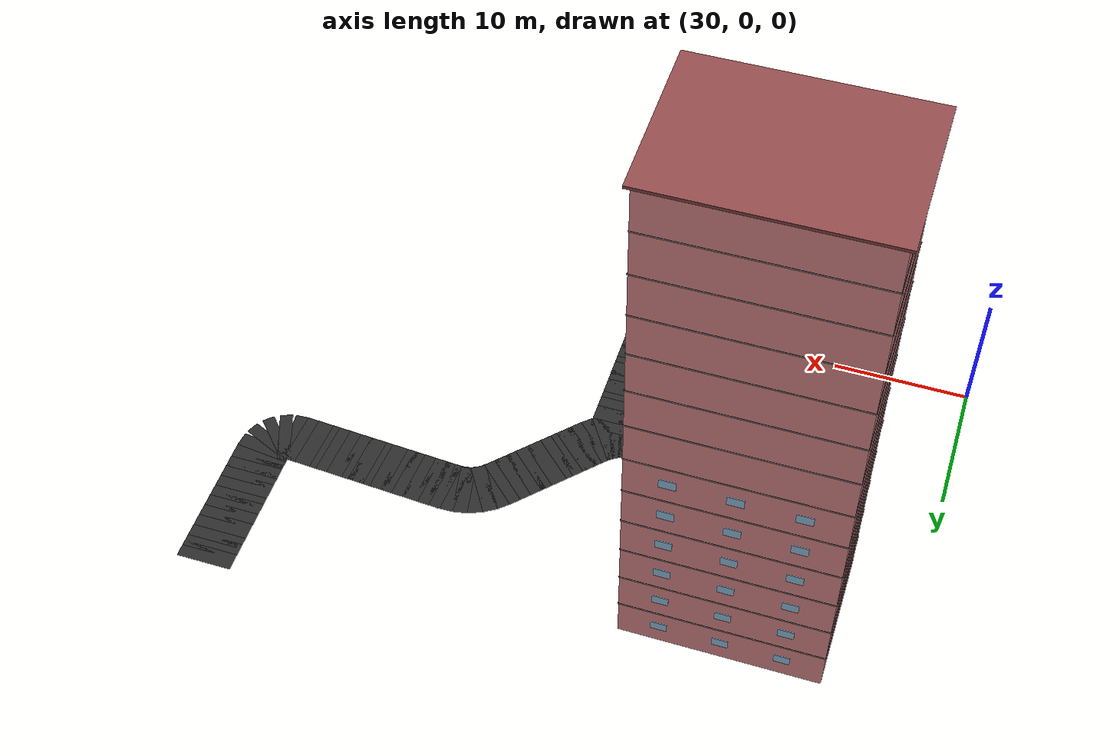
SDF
<sdf version="1.7">
 <world name="campus_delivery">
  <model name="campus_roads">
   <static>true</static>
   <link name="east_service_connector_0028">
    <pose>54.000 0.711 0.002 0 0 1.570796</pose>
    <visual name="visual">
     <geometry><box><size>1.245 4.000 0.004</size></box></geometry>
     <material><ambient>0.160 0.160 0.160 1.000</ambient><diffuse>0.160 0.160 0.160 1.000</diffuse></material>
    </visual>
   </link>
   <link name="east_service_connector_0029">
    <pose>54.000 1.605 0.002 0 0 1.570796</pose>
    <visual name="visual">
     <geometry><box><size>1.245 4.000 0.004</size></box></geometry>
     <material><ambient>0.160 0.160 0.160 1.000</ambient><diffuse>0.160 0.160 0.160 1.000</diffuse></material>
    </visual>
   </link>
   <link name="east_service_connector_0030">
    <pose>54.000 2.500 0.002 0 0 1.570796</pose>
    <visual name="visual">
     <geometry><box><size>1.245 4.000 0.004</size></box></geometry>
     <material><ambient>0.160 0.160 0.160 1.000</ambient><diffuse>0.160 0.160 0.160 1.000</diffuse></material>
    </visual>
   </link>
   <link name="east_service_connector_0031">
    <pose>54.000 3.395 0.002 0 0 1.570796</pose>
    <visual name="visual">
     <geometry><box><size>1.245 4.000 0.004</size></box></geometry>
     <material><ambient>0.160 0.160 0.160 1.000</ambient><diffuse>0.160 0.160 0.160 1.000</diffuse></material>
    </visual>
   </link>
   <link name="east_service_connector_0032">
    <pose>54.000 4.289 0.002 0 0 1.570796</pose>
    <visual name="visual">
     <geometry><box><size>1.245 4.000 0.004</size></box></geometry>
     <material><ambient>0.160 0.160 0.160 1.000</ambient><diffuse>0.160 0.160 0.160 1.000</diffuse></material>
    </visual>
   </link>
   <link name="east_service_connector_0033">
    <pose>54.000 5.184 0.002 0 0 1.570796</pose>
    <visual name="visual">
     <geometry><box><size>1.245 4.000 0.004</size></box></geometry>
     <material><ambient>0.160 0.160 0.160 1.000</ambient><diffuse>0.160 0.160 0.160 1.000</diffuse></material>
    </visual>
   </link>
   <link name="east_service_connector_0034">
    <pose>54.000 6.079 0.002 0 0 1.570796</pose>
    <visual name="visual">
     <geometry><box><size>1.245 4.000 0.004</size></box></geometry>
     <material><ambient>0.160 0.160 0.160 1.000</ambient><diffuse>0.160 0.160 0.160 1.000</diffuse></material>
    </visual>
   </link>
   <link name="east_service_connector_0035">
    <pose>54.000 6.974 0.002 0 0 1.570796</pose>
    <visual name="visual">
     <geometry><box><size>1.245 4.000 0.004</size></box></geometry>
     <material><ambient>0.160 0.160 0.160 1.000</ambient><diffuse>0.160 0.160 0.160 1.000</diffuse></material>
    </visual>
   </link>
   <link name="east_service_connector_0036">
    <pose>54.000 7.868 0.002 0 0 1.570796</pose>
    <visual name="visual">
     <geometry><box><size>1.245 4.000 0.004</size></box></geometry>
     <material><ambient>0.160 0.160 0.160 1.000</ambient><diffuse>0.160 0.160 0.160 1.000</diffuse></material>
    </visual>
   </link>
   <link name="east_service_connector_0037">
    <pose>54.000 8.763 0.002 0 0 1.570796</pose>
    <visual name="visual">
     <geometry><box><size>1.245 4.000 0.004</size></box></geometry>
     <material><ambient>0.160 0.160 0.160 1.000</ambient><diffuse>0.160 0.160 0.160 1.000</diffuse></material>
    </visual>
   </link>
   <link name="east_service_connector_0038">
    <pose>54.000 9.658 0.002 0 0 1.570796</pose>
    <visual name="visual">
     <geometry><box><size>1.245 4.000 0.004</size></box></geometry>
     <material><ambient>0.160 0.160 0.160 1.000</ambient><diffuse>0.160 0.160 0.160 1.000</diffuse></material>
    </visual>
   </link>
   <link name="east_service_connector_0039">
    <pose>54.000 10.553 0.002 0 0 1.570796</pose>
    <visual name="visual">
     <geometry><box><size>1.245 4.000 0.004</size></box></geometry>
     <material><ambient>0.160 0.160 0.160 1.000</ambient><diffuse>0.160 0.160 0.160 1.000</diffuse></material>
    </visual>
   </link>
   <link name="north_campus_loop_0012">
    <pose>42.870 11.000 0.002 0 0 0.000000</pose>
    <visual name="visual">
     <geometry><box><size>1.220 4.000 0.004</size></box></geometry>
     <material><ambient>0.160 0.160 0.160 1.000</ambient><diffuse>0.160 0.160 0.160 1.000</diffuse></material>
    </visual>
   </link>
   <link name="north_campus_loop_0013">
    <pose>43.739 11.000 0.002 0 0 0.000000</pose>
    <visual name="visual">
     <geometry><box><size>1.220 4.000 0.004</size></box></geometry>
     <material><ambient>0.160 0.160 0.160 1.000</ambient><diffuse>0.160 0.160 0.160 1.000</diffuse></material>
    </visual>
   </link>
   <link name="north_campus_loop_0014">
    <pose>44.609 11.000 0.002 0 0 0.000000</pose>
    <visual name="visual">
     <geometry><box><size>1.220 4.000 0.004</size></box></geometry>
     <material><ambient>0.160 0.160 0.160 1.000</ambient><diffuse>0.160 0.160 0.160 1.000</diffuse></material>
    </visual>
   </link>
   <link name="north_campus_loop_0015">
    <pose>45.478 11.000 0.002 0 0 0.000000</pose>
    <visual name="visual">
     <geometry><box><size>1.220 4.000 0.004</size></box></geometry>
     <material><ambient>0.160 0.160 0.160 1.000</ambient><diffuse>0.160 0.160 0.160 1.000</diffuse></material>
    </visual>
   </link>
   <link name="north_campus_loop_0016">
    <pose>46.348 11.000 0.002 0 0 0.000000</pose>
    <visual name="visual">
     <geometry><box><size>1.220 4.000 0.004</size></box></geometry>
     <material><ambient>0.160 0.160 0.160 1.000</ambient><diffuse>0.160 0.160 0.160 1.000</diffuse></material>
    </visual>
   </link>
   <link name="north_campus_loop_0017">
    <pose>47.217 11.000 0.002 0 0 0.000000</pose>
    <visual name="visual">
     <geometry><box><size>1.220 4.000 0.004</size></box></geometry>
     <material><ambient>0.160 0.160 0.160 1.000</ambient><diffuse>0.160 0.160 0.160 1.000</diffuse></material>
    </visual>
   </link>
   <link name="north_campus_loop_0018">
    <pose>48.087 11.000 0.002 0 0 0.000000</pose>
    <visual name="visual">
     <geometry><box><size>1.220 4.000 0.004</size></box></geometry>
     <material><ambient>0.160 0.160 0.160 1.000</ambient><diffuse>0.160 0.160 0.160 1.000</diffuse></material>
    </visual>
   </link>
   <link name="north_campus_loop_0019">
    <pose>48.957 11.000 0.002 0 0 0.000000</pose>
    <visual name="visual">
     <geometry><box><size>1.220 4.000 0.004</size></box></geometry>
     <material><ambient>0.160 0.160 0.160 1.000</ambient><diffuse>0.160 0.160 0.160 1.000</diffuse></material>
    </visual>
   </link>
   <link name="north_campus_loop_0020">
    <pose>49.826 11.000 0.002 0 0 0.000000</pose>
    <visual name="visual">
     <geometry><box><size>1.220 4.000 0.004</size></box></geometry>
     <material><ambient>0.160 0.160 0.160 1.000</ambient><diffuse>0.160 0.160 0.160 1.000</diffuse></material>
    </visual>
   </link>
   <link name="north_campus_loop_0021">
    <pose>50.696 11.000 0.002 0 0 0.000000</pose>
    <visual name="visual">
     <geometry><box><size>1.220 4.000 0.004</size></box></geometry>
     <material><ambient>0.160 0.160 0.160 1.000</ambient><diffuse>0.160 0.160 0.160 1.000</diffuse></material>
    </visual>
   </link>
   <link name="north_campus_loop_0022">
    <pose>51.565 11.000 0.002 0 0 0.000000</pose>
    <visual name="visual">
     <geometry><box><size>1.220 4.000 0.004</size></box></geometry>
     <material><ambient>0.160 0.160 0.160 1.000</ambient><diffuse>0.160 0.160 0.160 1.000</diffuse></material>
    </visual>
   </link>
   <link name="north_campus_loop_0023">
    <pose>52.387 11.029 0.002 0 0 0.075044</pose>
    <visual name="visual">
     <geometry><box><size>1.127 4.000 0.004</size></box></geometry>
     <material><ambient>0.160 0.160 0.160 1.000</ambient><diffuse>0.160 0.160 0.160 1.000</diffuse></material>
    </visual>
   </link>
   <link name="north_campus_loop_0024">
    <pose>53.137 11.146 0.002 0 0 0.236707</pose>
    <visual name="visual">
     <geometry><box><size>1.095 4.000 0.004</size></box></geometry>
     <material><ambient>0.160 0.160 0.160 1.000</ambient><diffuse>0.160 0.160 0.160 1.000</diffuse></material>
    </visual>
   </link>
   <link name="north_campus_loop_0025">
    <pose>53.836 11.379 0.002 0 0 0.407846</pose>
    <visual name="visual">
     <geometry><box><size>1.084 4.000 0.004</size></box></geometry>
     <material><ambient>0.160 0.160 0.160 1.000</ambient><diffuse>0.160 0.160 0.160 1.000</diffuse></material>
    </visual>
   </link>
   <link name="north_campus_loop_0026">
    <pose>54.485 11.728 0.002 0 0 0.578984</pose>
    <visual name="visual">
     <geometry><box><size>1.095 4.000 0.004</size></box></geometry>
     <material><ambient>0.160 0.160 0.160 1.000</ambient><diffuse>0.160 0.160 0.160 1.000</diffuse></material>
    </visual>
   </link>
   <link name="north_campus_loop_0027">
    <pose>55.084 12.194 0.002 0 0 0.740648</pose>
    <visual name="visual">
     <geometry><box><size>1.127 4.000 0.004</size></box></geometry>
     <material><ambient>0.160 0.160 0.160 1.000</ambient><diffuse>0.160 0.160 0.160 1.000</diffuse></material>
    </visual>
   </link>
   <link name="north_campus_loop_0028">
    <pose>55.663 12.767 0.002 0 0 0.815692</pose>
    <visual name="visual">
     <geometry><box><size>1.203 4.000 0.004</size></box></geometry>
     <material><ambient>0.160 0.160 0.160 1.000</ambient><diffuse>0.160 0.160 0.160 1.000</diffuse></material>
    </visual>
   </link>
   <link name="north_campus_loop_0029">
    <pose>56.247 13.388 0.002 0 0 0.815692</pose>
    <visual name="visual">
     <geometry><box><size>1.203 4.000 0.004</size></box></geometry>
     <material><ambient>0.160 0.160 0.160 1.000</ambient><diffuse>0.160 0.160 0.160 1.000</diffuse></material>
    </visual>
   </link>
   <link name="north_campus_loop_0030">
    <pose>56.831 14.008 0.002 0 0 0.815692</pose>
    <visual name="visual">
     <geometry><box><size>1.203 4.000 0.004</size></box></geometry>
     <material><ambient>0.160 0.160 0.160 1.000</ambient><diffuse>0.160 0.160 0.160 1.000</diffuse></material>
    </visual>
   </link>
   <link name="north_campus_loop_0031">
    <pose>57.416 14.629 0.002 0 0 0.815692</pose>
    <visual name="visual">
     <geometry><box><size>1.203 4.000 0.004</size></box></geometry>
     <material><ambient>0.160 0.160 0.160 1.000</ambient><diffuse>0.160 0.160 0.160 1.000</diffuse></material>
    </visual>
   </link>
   <link name="north_campus_loop_0032">
    <pose>58.000 15.250 0.002 0 0 0.815692</pose>
    <visual name="visual">
     <geometry><box><size>1.203 4.000 0.004</size></box></geometry>
     <material><ambient>0.160 0.160 0.160 1.000</ambient><diffuse>0.160 0.160 0.160 1.000</diffuse></material>
    </visual>
   </link>
   <link name="north_campus_loop_0033">
    <pose>58.584 15.871 0.002 0 0 0.815692</pose>
    <visual name="visual">
     <geometry><box><size>1.203 4.000 0.004</size></box></geometry>
     <material><ambient>0.160 0.160 0.160 1.000</ambient><diffuse>0.160 0.160 0.160 1.000</diffuse></material>
    </visual>
   </link>
   <link name="north_campus_loop_0034">
    <pose>59.169 16.492 0.002 0 0 0.815692</pose>
    <visual name="visual">
     <geometry><box><size>1.203 4.000 0.004</size></box></geometry>
     <material><ambient>0.160 0.160 0.160 1.000</ambient><diffuse>0.160 0.160 0.160 1.000</diffuse></material>
    </visual>
   </link>
   <link name="north_campus_loop_0035">
    <pose>59.753 17.112 0.002 0 0 0.815692</pose>
    <visual name="visual">
     <geometry><box><size>1.203 4.000 0.004</size></box></geometry>
     <material><ambient>0.160 0.160 0.160 1.000</ambient><diffuse>0.160 0.160 0.160 1.000</diffuse></material>
    </visual>
   </link>
   <link name="north_campus_loop_0036">
    <pose>60.337 17.733 0.002 0 0 0.815692</pose>
    <visual name="visual">
     <geometry><box><size>1.203 4.000 0.004</size></box></geometry>
     <material><ambient>0.160 0.160 0.160 1.000</ambient><diffuse>0.160 0.160 0.160 1.000</diffuse></material>
    </visual>
   </link>
   <link name="north_campus_loop_0037">
    <pose>60.916 18.303 0.002 0 0 0.736022</pose>
    <visual name="visual">
     <geometry><box><size>1.124 4.000 0.004</size></box></geometry>
     <material><ambient>0.160 0.160 0.160 1.000</ambient><diffuse>0.160 0.160 0.160 1.000</diffuse></material>
    </visual>
   </link>
   <link name="north_campus_loop_0038">
    <pose>61.514 18.759 0.002 0 0 0.562323</pose>
    <visual name="visual">
     <geometry><box><size>1.087 4.000 0.004</size></box></geometry>
     <material><ambient>0.160 0.160 0.160 1.000</ambient><diffuse>0.160 0.160 0.160 1.000</diffuse></material>
    </visual>
   </link>
   <link name="north_campus_loop_0039">
    <pose>62.163 19.089 0.002 0 0 0.376637</pose>
    <visual name="visual">
     <geometry><box><size>1.074 4.000 0.004</size></box></geometry>
     <material><ambient>0.160 0.160 0.160 1.000</ambient><diffuse>0.160 0.160 0.160 1.000</diffuse></material>
    </visual>
   </link>
   <link name="north_campus_loop_0040">
    <pose>62.861 19.292 0.002 0 0 0.190950</pose>
    <visual name="visual">
     <geometry><box><size>1.087 4.000 0.004</size></box></geometry>
     <material><ambient>0.160 0.160 0.160 1.000</ambient><diffuse>0.160 0.160 0.160 1.000</diffuse></material>
    </visual>
   </link>
   <link name="north_campus_loop_0041">
    <pose>63.609 19.369 0.002 0 0 0.017251</pose>
    <visual name="visual">
     <geometry><box><size>1.124 4.000 0.004</size></box></geometry>
     <material><ambient>0.160 0.160 0.160 1.000</ambient><diffuse>0.160 0.160 0.160 1.000</diffuse></material>
    </visual>
   </link>
   <link name="north_campus_loop_0042">
    <pose>64.425 19.348 0.002 0 0 -0.062419</pose>
    <visual name="visual">
     <geometry><box><size>1.209 4.000 0.004</size></box></geometry>
     <material><ambient>0.160 0.160 0.160 1.000</ambient><diffuse>0.160 0.160 0.160 1.000</diffuse></material>
    </visual>
   </link>
   <link name="north_campus_loop_0043">
    <pose>65.283 19.295 0.002 0 0 -0.062419</pose>
    <visual name="visual">
     <geometry><box><size>1.209 4.000 0.004</size></box></geometry>
     <material><ambient>0.160 0.160 0.160 1.000</ambient><diffuse>0.160 0.160 0.160 1.000</diffuse></material>
    </visual>
   </link>
   <link name="north_campus_loop_0044">
    <pose>66.140 19.241 0.002 0 0 -0.062419</pose>
    <visual name="visual">
     <geometry><box><size>1.209 4.000 0.004</size></box></geometry>
     <material><ambient>0.160 0.160 0.160 1.000</ambient><diffuse>0.160 0.160 0.160 1.000</diffuse></material>
    </visual>
   </link>
   <link name="north_campus_loop_0045">
    <pose>66.998 19.188 0.002 0 0 -0.062419</pose>
    <visual name="visual">
     <geometry><box><size>1.209 4.000 0.004</size></box></geometry>
     <material><ambient>0.160 0.160 0.160 1.000</ambient><diffuse>0.160 0.160 0.160 1.000</diffuse></material>
    </visual>
   </link>
   <link name="north_campus_loop_0046">
    <pose>67.856 19.134 0.002 0 0 -0.062419</pose>
    <visual name="visual">
     <geometry><box><size>1.209 4.000 0.004</size></box></geometry>
     <material><ambient>0.160 0.160 0.160 1.000</ambient><diffuse>0.160 0.160 0.160 1.000</diffuse></material>
    </visual>
   </link>
   <link name="north_campus_loop_0047">
    <pose>68.713 19.080 0.002 0 0 -0.062419</pose>
    <visual name="visual">
     <geometry><box><size>1.209 4.000 0.004</size></box></geometry>
     <material><ambient>0.160 0.160 0.160 1.000</ambient><diffuse>0.160 0.160 0.160 1.000</diffuse></material>
    </visual>
   </link>
   <link name="north_campus_loop_0048">
    <pose>69.571 19.027 0.002 0 0 -0.062419</pose>
    <visual name="visual">
     <geometry><box><size>1.209 4.000 0.004</size></box></geometry>
     <material><ambient>0.160 0.160 0.160 1.000</ambient><diffuse>0.160 0.160 0.160 1.000</diffuse></material>
    </visual>
   </link>
   <link name="north_campus_loop_0049">
    <pose>70.429 18.973 0.002 0 0 -0.062419</pose>
    <visual name="visual">
     <geometry><box><size>1.209 4.000 0.004</size></box></geometry>
     <material><ambient>0.160 0.160 0.160 1.000</ambient><diffuse>0.160 0.160 0.160 1.000</diffuse></material>
    </visual>
   </link>
   <link name="north_campus_loop_0050">
    <pose>71.287 18.920 0.002 0 0 -0.062419</pose>
    <visual name="visual">
     <geometry><box><size>1.209 4.000 0.004</size></box></geometry>
     <material><ambient>0.160 0.160 0.160 1.000</ambient><diffuse>0.160 0.160 0.160 1.000</diffuse></material>
    </visual>
   </link>
   <link name="north_campus_loop_0051">
    <pose>72.144 18.866 0.002 0 0 -0.062419</pose>
    <visual name="visual">
     <geometry><box><size>1.209 4.000 0.004</size></box></geometry>
     <material><ambient>0.160 0.160 0.160 1.000</ambient><diffuse>0.160 0.160 0.160 1.000</diffuse></material>
    </visual>
   </link>
   <link name="north_campus_loop_0052">
    <pose>73.002 18.812 0.002 0 0 -0.062419</pose>
    <visual name="visual">
     <geometry><box><size>1.209 4.000 0.004</size></box></geometry>
     <material><ambient>0.160 0.160 0.160 1.000</ambient><diffuse>0.160 0.160 0.160 1.000</diffuse></material>
    </visual>
   </link>
   <link name="north_campus_loop_0053">
    <pose>73.860 18.759 0.002 0 0 -0.062419</pose>
    <visual name="visual">
     <geometry><box><size>1.209 4.000 0.004</size></box></geometry>
     <material><ambient>0.160 0.160 0.160 1.000</ambient><diffuse>0.160 0.160 0.160 1.000</diffuse></material>
    </visual>
   </link>
   <link name="north_campus_loop_0054">
    <pose>74.717 18.705 0.002 0 0 -0.062419</pose>
    <visual name="visual">
     <geometry><box><size>1.209 4.000 0.004</size></box></geometry>
     <material><ambient>0.160 0.160 0.160 1.000</ambient><diffuse>0.160 0.160 0.160 1.000</diffuse></material>
    </visual>
   </link>
   <link name="north_campus_loop_0055">
    <pose>75.575 18.652 0.002 0 0 -0.062419</pose>
    <visual name="visual">
     <geometry><box><size>1.209 4.000 0.004</size></box></geometry>
     <material><ambient>0.160 0.160 0.160 1.000</ambient><diffuse>0.160 0.160 0.160 1.000</diffuse></material>
    </visual>
   </link>
   <link name="north_campus_loop_0056">
    <pose>76.363 18.642 0.002 0 0 0.048789</pose>
    <visual name="visual">
     <geometry><box><size>1.069 4.000 0.004</size></box></geometry>
     <material><ambient>0.160 0.160 0.160 1.000</ambient><diffuse>0.160 0.160 0.160 1.000</diffuse></material>
    </visual>
   </link>
   <link name="north_campus_loop_0057">
    <pose>77.002 18.762 0.002 0 0 0.351657</pose>
    <visual name="visual">
     <geometry><box><size>0.945 4.000 0.004</size></box></geometry>
     <material><ambient>0.160 0.160 0.160 1.000</ambient><diffuse>0.160 0.160 0.160 1.000</diffuse></material>
    </visual>
   </link>
   <link name="north_campus_loop_0058">
    <pose>77.481 19.052 0.002 0 0 0.754189</pose>
    <visual name="visual">
     <geometry><box><size>0.898 4.000 0.004</size></box></geometry>
     <material><ambient>0.160 0.160 0.160 1.000</ambient><diffuse>0.160 0.160 0.160 1.000</diffuse></material>
    </visual>
   </link>
   <link name="north_campus_loop_0059">
    <pose>77.800 19.512 0.002 0 0 1.156720</pose>
    <visual name="visual">
     <geometry><box><size>0.945 4.000 0.004</size></box></geometry>
     <material><ambient>0.160 0.160 0.160 1.000</ambient><diffuse>0.160 0.160 0.160 1.000</diffuse></material>
    </visual>
   </link>
   <link name="north_campus_loop_0060">
    <pose>77.960 20.142 0.002 0 0 1.459588</pose>
    <visual name="visual">
     <geometry><box><size>1.069 4.000 0.004</size></box></geometry>
     <material><ambient>0.160 0.160 0.160 1.000</ambient><diffuse>0.160 0.160 0.160 1.000</diffuse></material>
    </visual>
   </link>
   <link name="north_campus_loop_0061">
    <pose>78.000 20.950 0.002 0 0 1.570796</pose>
    <visual name="visual">
     <geometry><box><size>1.250 4.000 0.004</size></box></geometry>
     <material><ambient>0.160 0.160 0.160 1.000</ambient><diffuse>0.160 0.160 0.160 1.000</diffuse></material>
    </visual>
   </link>
   <link name="north_campus_loop_0062">
    <pose>78.000 21.850 0.002 0 0 1.570796</pose>
    <visual name="visual">
     <geometry><box><size>1.250 4.000 0.004</size></box></geometry>
     <material><ambient>0.160 0.160 0.160 1.000</ambient><diffuse>0.160 0.160 0.160 1.000</diffuse></material>
    </visual>
   </link>
   <link name="north_campus_loop_0063">
    <pose>78.000 22.750 0.002 0 0 1.570796</pose>
    <visual name="visual">
     <geometry><box><size>1.250 4.000 0.004</size></box></geometry>
     <material><ambient>0.160 0.160 0.160 1.000</ambient><diffuse>0.160 0.160 0.160 1.000</diffuse></material>
    </visual>
   </link>
   <link name="north_campus_loop_0064">
    <pose>78.000 23.650 0.002 0 0 1.570796</pose>
    <visual name="visual">
     <geometry><box><size>1.250 4.000 0.004</size></box></geometry>
     <material><ambient>0.160 0.160 0.160 1.000</ambient><diffuse>0.160 0.160 0.160 1.000</diffuse></material>
    </visual>
   </link>
   <link name="north_campus_loop_0065">
    <pose>78.000 24.550 0.002 0 0 1.570796</pose>
    <visual name="visual">
     <geometry><box><size>1.250 4.000 0.004</size></box></geometry>
     <material><ambient>0.160 0.160 0.160 1.000</ambient><diffuse>0.160 0.160 0.160 1.000</diffuse></material>
    </visual>
   </link>
   <link name="north_campus_loop_0066">
    <pose>78.000 25.450 0.002 0 0 1.570796</pose>
    <visual name="visual">
     <geometry><box><size>1.250 4.000 0.004</size></box></geometry>
     <material><ambient>0.160 0.160 0.160 1.000</ambient><diffuse>0.160 0.160 0.160 1.000</diffuse></material>
    </visual>
   </link>
   <link name="north_campus_loop_0067">
    <pose>78.000 26.350 0.002 0 0 1.570796</pose>
    <visual name="visual">
     <geometry><box><size>1.250 4.000 0.004</size></box></geometry>
     <material><ambient>0.160 0.160 0.160 1.000</ambient><diffuse>0.160 0.160 0.160 1.000</diffuse></material>
    </visual>
   </link>
   <link name="north_campus_loop_0068">
    <pose>78.000 27.250 0.002 0 0 1.570796</pose>
    <visual name="visual">
     <geometry><box><size>1.250 4.000 0.004</size></box></geometry>
     <material><ambient>0.160 0.160 0.160 1.000</ambient><diffuse>0.160 0.160 0.160 1.000</diffuse></material>
    </visual>
   </link>
   <link name="north_campus_loop_0069">
    <pose>78.000 28.150 0.002 0 0 1.570796</pose>
    <visual name="visual">
     <geometry><box><size>1.250 4.000 0.004</size></box></geometry>
     <material><ambient>0.160 0.160 0.160 1.000</ambient><diffuse>0.160 0.160 0.160 1.000</diffuse></material>
    </visual>
   </link>
   <link name="north_campus_loop_0070">
    <pose>78.000 29.050 0.002 0 0 1.570796</pose>
    <visual name="visual">
     <geometry><box><size>1.250 4.000 0.004</size></box></geometry>
     <material><ambient>0.160 0.160 0.160 1.000</ambient><diffuse>0.160 0.160 0.160 1.000</diffuse></material>
    </visual>
   </link>
   <link name="north_campus_loop_0071">
    <pose>78.000 29.950 0.002 0 0 1.570796</pose>
    <visual name="visual">
     <geometry><box><size>1.250 4.000 0.004</size></box></geometry>
     <material><ambient>0.160 0.160 0.160 1.000</ambient><diffuse>0.160 0.160 0.160 1.000</diffuse></material>
    </visual>
   </link>
  </model>
  <model name="dormitory_4">
   <static>true</static>
   <pose>42.000 22.000 0 0 0 0</pose>
   <link name="body">
    <visual name="body">
     <pose>0 0 20.800 0 0 0</pose>
     <geometry><box><size>14.000 10.000 41.600</size></box></geometry>
     <material><ambient>0.920 0.580 0.580 1.000</ambient><diffuse>0.920 0.580 0.580 1.000</diffuse></material>
    </visual>
    <collision name="body_collision">
     <pose>0 0 20.800 0 0 0</pose>
     <geometry><box><size>14.000 10.000 41.600</size></box></geometry>
    </collision>
    <visual name="roof">
     <pose>0 0 41.700 0 0 0</pose>
     <geometry><box><size>14.600 10.600 0.200</size></box></geometry>
     <material><ambient>0.550 0.280 0.280 1.000</ambient><diffuse>0.550 0.280 0.280 1.000</diffuse></material>
    </visual>
    <visual name="floor_sep_n_1">
     <pose>0 5.018 3.200 0 0 0</pose>
     <geometry><box><size>14.100 0.035 0.060</size></box></geometry>
     <material><ambient>0.080 0.080 0.080 1.000</ambient><diffuse>0.080 0.080 0.080 1.000</diffuse></material>
    </visual>
    <visual name="floor_sep_s_1">
     <pose>0 -5.018 3.200 0 0 0</pose>
     <geometry><box><size>14.100 0.035 0.060</size></box></geometry>
     <material><ambient>0.080 0.080 0.080 1.000</ambient><diffuse>0.080 0.080 0.080 1.000</diffuse></material>
    </visual>
    <visual name="floor_sep_e_1">
     <pose>7.018 0 3.200 0 0 0</pose>
     <geometry><box><size>0.035 10.100 0.060</size></box></geometry>
     <material><ambient>0.080 0.080 0.080 1.000</ambient><diffuse>0.080 0.080 0.080 1.000</diffuse></material>
    </visual>
    <visual name="floor_sep_w_1">
     <pose>-7.018 0 3.200 0 0 0</pose>
     <geometry><box><size>0.035 10.100 0.060</size></box></geometry>
     <material><ambient>0.080 0.080 0.080 1.000</ambient><diffuse>0.080 0.080 0.080 1.000</diffuse></material>
    </visual>
    <visual name="floor_sep_n_2">
     <pose>0 5.018 6.400 0 0 0</pose>
     <geometry><box><size>14.100 0.035 0.060</size></box></geometry>
     <material><ambient>0.080 0.080 0.080 1.000</ambient><diffuse>0.080 0.080 0.080 1.000</diffuse></material>
    </visual>
    <visual name="floor_sep_s_2">
     <pose>0 -5.018 6.400 0 0 0</pose>
     <geometry><box><size>14.100 0.035 0.060</size></box></geometry>
     <material><ambient>0.080 0.080 0.080 1.000</ambient><diffuse>0.080 0.080 0.080 1.000</diffuse></material>
    </visual>
    <visual name="floor_sep_e_2">
     <pose>7.018 0 6.400 0 0 0</pose>
     <geometry><box><size>0.035 10.100 0.060</size></box></geometry>
     <material><ambient>0.080 0.080 0.080 1.000</ambient><diffuse>0.080 0.080 0.080 1.000</diffuse></material>
    </visual>
    <visual name="floor_sep_w_2">
     <pose>-7.018 0 6.400 0 0 0</pose>
     <geometry><box><size>0.035 10.100 0.060</size></box></geometry>
     <material><ambient>0.080 0.080 0.080 1.000</ambient><diffuse>0.080 0.080 0.080 1.000</diffuse></material>
    </visual>
    <visual name="floor_sep_n_3">
     <pose>0 5.018 9.600 0 0 0</pose>
     <geometry><box><size>14.100 0.035 0.060</size></box></geometry>
     <material><ambient>0.080 0.080 0.080 1.000</ambient><diffuse>0.080 0.080 0.080 1.000</diffuse></material>
    </visual>
    <visual name="floor_sep_s_3">
     <pose>0 -5.018 9.600 0 0 0</pose>
     <geometry><box><size>14.100 0.035 0.060</size></box></geometry>
     <material><ambient>0.080 0.080 0.080 1.000</ambient><diffuse>0.080 0.080 0.080 1.000</diffuse></material>
    </visual>
    <visual name="floor_sep_e_3">
     <pose>7.018 0 9.600 0 0 0</pose>
     <geometry><box><size>0.035 10.100 0.060</size></box></geometry>
     <material><ambient>0.080 0.080 0.080 1.000</ambient><diffuse>0.080 0.080 0.080 1.000</diffuse></material>
    </visual>
    <visual name="floor_sep_w_3">
     <pose>-7.018 0 9.600 0 0 0</pose>
     <geometry><box><size>0.035 10.100 0.060</size></box></geometry>
     <material><ambient>0.080 0.080 0.080 1.000</ambient><diffuse>0.080 0.080 0.080 1.000</diffuse></material>
    </visual>
    <visual name="floor_sep_n_4">
     <pose>0 5.018 12.800 0 0 0</pose>
     <geometry><box><size>14.100 0.035 0.060</size></box></geometry>
     <material><ambient>0.080 0.080 0.080 1.000</ambient><diffuse>0.080 0.080 0.080 1.000</diffuse></material>
    </visual>
    <visual name="floor_sep_s_4">
     <pose>0 -5.018 12.800 0 0 0</pose>
     <geometry><box><size>14.100 0.035 0.060</size></box></geometry>
     <material><ambient>0.080 0.080 0.080 1.000</ambient><diffuse>0.080 0.080 0.080 1.000</diffuse></material>
    </visual>
    <visual name="floor_sep_e_4">
     <pose>7.018 0 12.800 0 0 0</pose>
     <geometry><box><size>0.035 10.100 0.060</size></box></geometry>
     <material><ambient>0.080 0.080 0.080 1.000</ambient><diffuse>0.080 0.080 0.080 1.000</diffuse></material>
    </visual>
    <visual name="floor_sep_w_4">
     <pose>-7.018 0 12.800 0 0 0</pose>
     <geometry><box><size>0.035 10.100 0.060</size></box></geometry>
     <material><ambient>0.080 0.080 0.080 1.000</ambient><diffuse>0.080 0.080 0.080 1.000</diffuse></material>
    </visual>
    <visual name="floor_sep_n_5">
     <pose>0 5.018 16.000 0 0 0</pose>
     <geometry><box><size>14.100 0.035 0.060</size></box></geometry>
     <material><ambient>0.080 0.080 0.080 1.000</ambient><diffuse>0.080 0.080 0.080 1.000</diffuse></material>
    </visual>
    <visual name="floor_sep_s_5">
     <pose>0 -5.018 16.000 0 0 0</pose>
     <geometry><box><size>14.100 0.035 0.060</size></box></geometry>
     <material><ambient>0.080 0.080 0.080 1.000</ambient><diffuse>0.080 0.080 0.080 1.000</diffuse></material>
    </visual>
    <visual name="floor_sep_e_5">
     <pose>7.018 0 16.000 0 0 0</pose>
     <geometry><box><size>0.035 10.100 0.060</size></box></geometry>
     <material><ambient>0.080 0.080 0.080 1.000</ambient><diffuse>0.080 0.080 0.080 1.000</diffuse></material>
    </visual>
    <visual name="floor_sep_w_5">
     <pose>-7.018 0 16.000 0 0 0</pose>
     <geometry><box><size>0.035 10.100 0.060</size></box></geometry>
     <material><ambient>0.080 0.080 0.080 1.000</ambient><diffuse>0.080 0.080 0.080 1.000</diffuse></material>
    </visual>
    <visual name="floor_sep_n_6">
     <pose>0 5.018 19.200 0 0 0</pose>
     <geometry><box><size>14.100 0.035 0.060</size></box></geometry>
     <material><ambient>0.080 0.080 0.080 1.000</ambient><diffuse>0.080 0.080 0.080 1.000</diffuse></material>
    </visual>
    <visual name="floor_sep_s_6">
     <pose>0 -5.018 19.200 0 0 0</pose>
     <geometry><box><size>14.100 0.035 0.060</size></box></geometry>
     <material><ambient>0.080 0.080 0.080 1.000</ambient><diffuse>0.080 0.080 0.080 1.000</diffuse></material>
    </visual>
    <visual name="floor_sep_e_6">
     <pose>7.018 0 19.200 0 0 0</pose>
     <geometry><box><size>0.035 10.100 0.060</size></box></geometry>
     <material><ambient>0.080 0.080 0.080 1.000</ambient><diffuse>0.080 0.080 0.080 1.000</diffuse></material>
    </visual>
    <visual name="floor_sep_w_6">
     <pose>-7.018 0 19.200 0 0 0</pose>
     <geometry><box><size>0.035 10.100 0.060</size></box></geometry>
     <material><ambient>0.080 0.080 0.080 1.000</ambient><diffuse>0.080 0.080 0.080 1.000</diffuse></material>
    </visual>
    <visual name="floor_sep_n_7">
     <pose>0 5.018 22.400 0 0 0</pose>
     <geometry><box><size>14.100 0.035 0.060</size></box></geometry>
     <material><ambient>0.080 0.080 0.080 1.000</ambient><diffuse>0.080 0.080 0.080 1.000</diffuse></material>
    </visual>
    <visual name="floor_sep_s_7">
     <pose>0 -5.018 22.400 0 0 0</pose>
     <geometry><box><size>14.100 0.035 0.060</size></box></geometry>
     <material><ambient>0.080 0.080 0.080 1.000</ambient><diffuse>0.080 0.080 0.080 1.000</diffuse></material>
    </visual>
    <visual name="floor_sep_e_7">
     <pose>7.018 0 22.400 0 0 0</pose>
     <geometry><box><size>0.035 10.100 0.060</size></box></geometry>
     <material><ambient>0.080 0.080 0.080 1.000</ambient><diffuse>0.080 0.080 0.080 1.000</diffuse></material>
    </visual>
    <visual name="floor_sep_w_7">
     <pose>-7.018 0 22.400 0 0 0</pose>
     <geometry><box><size>0.035 10.100 0.060</size></box></geometry>
     <material><ambient>0.080 0.080 0.080 1.000</ambient><diffuse>0.080 0.080 0.080 1.000</diffuse></material>
    </visual>
    <visual name="floor_sep_n_8">
     <pose>0 5.018 25.600 0 0 0</pose>
     <geometry><box><size>14.100 0.035 0.060</size></box></geometry>
     <material><ambient>0.080 0.080 0.080 1.000</ambient><diffuse>0.080 0.080 0.080 1.000</diffuse></material>
    </visual>
    <visual name="floor_sep_s_8">
     <pose>0 -5.018 25.600 0 0 0</pose>
     <geometry><box><size>14.100 0.035 0.060</size></box></geometry>
     <material><ambient>0.080 0.080 0.080 1.000</ambient><diffuse>0.080 0.080 0.080 1.000</diffuse></material>
    </visual>
    <visual name="floor_sep_e_8">
     <pose>7.018 0 25.600 0 0 0</pose>
     <geometry><box><size>0.035 10.100 0.060</size></box></geometry>
     <material><ambient>0.080 0.080 0.080 1.000</ambient><diffuse>0.080 0.080 0.080 1.000</diffuse></material>
    </visual>
    <visual name="floor_sep_w_8">
     <pose>-7.018 0 25.600 0 0 0</pose>
     <geometry><box><size>0.035 10.100 0.060</size></box></geometry>
     <material><ambient>0.080 0.080 0.080 1.000</ambient><diffuse>0.080 0.080 0.080 1.000</diffuse></material>
    </visual>
    <visual name="floor_sep_n_9">
     <pose>0 5.018 28.800 0 0 0</pose>
     <geometry><box><size>14.100 0.035 0.060</size></box></geometry>
     <material><ambient>0.080 0.080 0.080 1.000</ambient><diffuse>0.080 0.080 0.080 1.000</diffuse></material>
    </visual>
    <visual name="floor_sep_s_9">
     <pose>0 -5.018 28.800 0 0 0</pose>
     <geometry><box><size>14.100 0.035 0.060</size></box></geometry>
     <material><ambient>0.080 0.080 0.080 1.000</ambient><diffuse>0.080 0.080 0.080 1.000</diffuse></material>
    </visual>
    <visual name="floor_sep_e_9">
     <pose>7.018 0 28.800 0 0 0</pose>
     <geometry><box><size>0.035 10.100 0.060</size></box></geometry>
     <material><ambient>0.080 0.080 0.080 1.000</ambient><diffuse>0.080 0.080 0.080 1.000</diffuse></material>
    </visual>
    <visual name="floor_sep_w_9">
     <pose>-7.018 0 28.800 0 0 0</pose>
     <geometry><box><size>0.035 10.100 0.060</size></box></geometry>
     <material><ambient>0.080 0.080 0.080 1.000</ambient><diffuse>0.080 0.080 0.080 1.000</diffuse></material>
    </visual>
    <visual name="floor_sep_n_10">
     <pose>0 5.018 32.000 0 0 0</pose>
     <geometry><box><size>14.100 0.035 0.060</size></box></geometry>
     <material><ambient>0.080 0.080 0.080 1.000</ambient><diffuse>0.080 0.080 0.080 1.000</diffuse></material>
    </visual>
    <visual name="floor_sep_s_10">
     <pose>0 -5.018 32.000 0 0 0</pose>
     <geometry><box><size>14.100 0.035 0.060</size></box></geometry>
     <material><ambient>0.080 0.080 0.080 1.000</ambient><diffuse>0.080 0.080 0.080 1.000</diffuse></material>
    </visual>
    <visual name="floor_sep_e_10">
     <pose>7.018 0 32.000 0 0 0</pose>
     <geometry><box><size>0.035 10.100 0.060</size></box></geometry>
     <material><ambient>0.080 0.080 0.080 1.000</ambient><diffuse>0.080 0.080 0.080 1.000</diffuse></material>
    </visual>
    <visual name="floor_sep_w_10">
     <pose>-7.018 0 32.000 0 0 0</pose>
     <geometry><box><size>0.035 10.100 0.060</size></box></geometry>
     <material><ambient>0.080 0.080 0.080 1.000</ambient><diffuse>0.080 0.080 0.080 1.000</diffuse></material>
    </visual>
    <visual name="floor_sep_n_11">
     <pose>0 5.018 35.200 0 0 0</pose>
     <geometry><box><size>14.100 0.035 0.060</size></box></geometry>
     <material><ambient>0.080 0.080 0.080 1.000</ambient><diffuse>0.080 0.080 0.080 1.000</diffuse></material>
    </visual>
    <visual name="floor_sep_s_11">
     <pose>0 -5.018 35.200 0 0 0</pose>
     <geometry><box><size>14.100 0.035 0.060</size></box></geometry>
     <material><ambient>0.080 0.080 0.080 1.000</ambient><diffuse>0.080 0.080 0.080 1.000</diffuse></material>
    </visual>
    <visual name="floor_sep_e_11">
     <pose>7.018 0 35.200 0 0 0</pose>
     <geometry><box><size>0.035 10.100 0.060</size></box></geometry>
     <material><ambient>0.080 0.080 0.080 1.000</ambient><diffuse>0.080 0.080 0.080 1.000</diffuse></material>
    </visual>
    <visual name="floor_sep_w_11">
     <pose>-7.018 0 35.200 0 0 0</pose>
     <geometry><box><size>0.035 10.100 0.060</size></box></geometry>
     <material><ambient>0.080 0.080 0.080 1.000</ambient><diffuse>0.080 0.080 0.080 1.000</diffuse></material>
    </visual>
    <visual name="floor_sep_n_12">
     <pose>0 5.018 38.400 0 0 0</pose>
     <geometry><box><size>14.100 0.035 0.060</size></box></geometry>
     <material><ambient>0.080 0.080 0.080 1.000</ambient><diffuse>0.080 0.080 0.080 1.000</diffuse></material>
    </visual>
    <visual name="floor_sep_s_12">
     <pose>0 -5.018 38.400 0 0 0</pose>
     <geometry><box><size>14.100 0.035 0.060</size></box></geometry>
     <material><ambient>0.080 0.080 0.080 1.000</ambient><diffuse>0.080 0.080 0.080 1.000</diffuse></material>
    </visual>
    <visual name="floor_sep_e_12">
     <pose>7.018 0 38.400 0 0 0</pose>
     <geometry><box><size>0.035 10.100 0.060</size></box></geometry>
     <material><ambient>0.080 0.080 0.080 1.000</ambient><diffuse>0.080 0.080 0.080 1.000</diffuse></material>
    </visual>
    <visual name="floor_sep_w_12">
     <pose>-7.018 0 38.400 0 0 0</pose>
     <geometry><box><size>0.035 10.100 0.060</size></box></geometry>
     <material><ambient>0.080 0.080 0.080 1.000</ambient><diffuse>0.080 0.080 0.080 1.000</diffuse></material>
    </visual>
    <visual name="front_door">
     <pose>0 -5.012 1.2 0 0 0</pose>
     <geometry><box><size>3.000 0.050 2.400</size></box></geometry>
     <material><ambient>0.080 0.060 0.040 1.000</ambient><diffuse>0.080 0.060 0.040 1.000</diffuse></material>
    </visual>
    <visual name="win_n_1_-4.2">
     <pose>-4.200 5.020 1.700 0 0 0</pose>
     <geometry><box><size>1.100 0.035 0.750</size></box></geometry>
     <material><ambient>0.620 0.820 0.950 1.000</ambient><diffuse>0.620 0.820 0.950 1.000</diffuse></material>
    </visual>
    <visual name="win_s_1_-4.2">
     <pose>-4.200 -5.020 1.700 0 0 0</pose>
     <geometry><box><size>1.100 0.035 0.750</size></box></geometry>
     <material><ambient>0.620 0.820 0.950 1.000</ambient><diffuse>0.620 0.820 0.950 1.000</diffuse></material>
    </visual>
    <visual name="win_n_1_0.0">
     <pose>0.000 5.020 1.700 0 0 0</pose>
     <geometry><box><size>1.100 0.035 0.750</size></box></geometry>
     <material><ambient>0.620 0.820 0.950 1.000</ambient><diffuse>0.620 0.820 0.950 1.000</diffuse></material>
    </visual>
    <visual name="win_s_1_0.0">
     <pose>0.000 -5.020 1.700 0 0 0</pose>
     <geometry><box><size>1.100 0.035 0.750</size></box></geometry>
     <material><ambient>0.620 0.820 0.950 1.000</ambient><diffuse>0.620 0.820 0.950 1.000</diffuse></material>
    </visual>
    <visual name="win_n_1_4.2">
     <pose>4.200 5.020 1.700 0 0 0</pose>
     <geometry><box><size>1.100 0.035 0.750</size></box></geometry>
     <material><ambient>0.620 0.820 0.950 1.000</ambient><diffuse>0.620 0.820 0.950 1.000</diffuse></material>
    </visual>
    <visual name="win_s_1_4.2">
     <pose>4.200 -5.020 1.700 0 0 0</pose>
     <geometry><box><size>1.100 0.035 0.750</size></box></geometry>
     <material><ambient>0.620 0.820 0.950 1.000</ambient><diffuse>0.620 0.820 0.950 1.000</diffuse></material>
    </visual>
    <visual name="win_n_2_-4.2">
     <pose>-4.200 5.020 4.900 0 0 0</pose>
     <geometry><box><size>1.100 0.035 0.750</size></box></geometry>
     <material><ambient>0.620 0.820 0.950 1.000</ambient><diffuse>0.620 0.820 0.950 1.000</diffuse></material>
    </visual>
    <visual name="win_s_2_-4.2">
     <pose>-4.200 -5.020 4.900 0 0 0</pose>
     <geometry><box><size>1.100 0.035 0.750</size></box></geometry>
     <material><ambient>0.620 0.820 0.950 1.000</ambient><diffuse>0.620 0.820 0.950 1.000</diffuse></material>
    </visual>
    <visual name="win_n_2_0.0">
     <pose>0.000 5.020 4.900 0 0 0</pose>
     <geometry><box><size>1.100 0.035 0.750</size></box></geometry>
     <material><ambient>0.620 0.820 0.950 1.000</ambient><diffuse>0.620 0.820 0.950 1.000</diffuse></material>
    </visual>
    <visual name="win_s_2_0.0">
     <pose>0.000 -5.020 4.900 0 0 0</pose>
     <geometry><box><size>1.100 0.035 0.750</size></box></geometry>
     <material><ambient>0.620 0.820 0.950 1.000</ambient><diffuse>0.620 0.820 0.950 1.000</diffuse></material>
    </visual>
    <visual name="win_n_2_4.2">
     <pose>4.200 5.020 4.900 0 0 0</pose>
     <geometry><box><size>1.100 0.035 0.750</size></box></geometry>
     <material><ambient>0.620 0.820 0.950 1.000</ambient><diffuse>0.620 0.820 0.950 1.000</diffuse></material>
    </visual>
    <visual name="win_s_2_4.2">
     <pose>4.200 -5.020 4.900 0 0 0</pose>
     <geometry><box><size>1.100 0.035 0.750</size></box></geometry>
     <material><ambient>0.620 0.820 0.950 1.000</ambient><diffuse>0.620 0.820 0.950 1.000</diffuse></material>
    </visual>
    <visual name="win_n_3_-4.2">
     <pose>-4.200 5.020 8.100 0 0 0</pose>
     <geometry><box><size>1.100 0.035 0.750</size></box></geometry>
     <material><ambient>0.620 0.820 0.950 1.000</ambient><diffuse>0.620 0.820 0.950 1.000</diffuse></material>
    </visual>
    <visual name="win_s_3_-4.2">
     <pose>-4.200 -5.020 8.100 0 0 0</pose>
     <geometry><box><size>1.100 0.035 0.750</size></box></geometry>
     <material><ambient>0.620 0.820 0.950 1.000</ambient><diffuse>0.620 0.820 0.950 1.000</diffuse></material>
    </visual>
    <visual name="win_n_3_0.0">
     <pose>0.000 5.020 8.100 0 0 0</pose>
     <geometry><box><size>1.100 0.035 0.750</size></box></geometry>
     <material><ambient>0.620 0.820 0.950 1.000</ambient><diffuse>0.620 0.820 0.950 1.000</diffuse></material>
    </visual>
    <visual name="win_s_3_0.0">
     <pose>0.000 -5.020 8.100 0 0 0</pose>
     <geometry><box><size>1.100 0.035 0.750</size></box></geometry>
     <material><ambient>0.620 0.820 0.950 1.000</ambient><diffuse>0.620 0.820 0.950 1.000</diffuse></material>
    </visual>
    <visual name="win_n_3_4.2">
     <pose>4.200 5.020 8.100 0 0 0</pose>
     <geometry><box><size>1.100 0.035 0.750</size></box></geometry>
     <material><ambient>0.620 0.820 0.950 1.000</ambient><diffuse>0.620 0.820 0.950 1.000</diffuse></material>
    </visual>
    <visual name="win_s_3_4.2">
     <pose>4.200 -5.020 8.100 0 0 0</pose>
     <geometry><box><size>1.100 0.035 0.750</size></box></geometry>
     <material><ambient>0.620 0.820 0.950 1.000</ambient><diffuse>0.620 0.820 0.950 1.000</diffuse></material>
    </visual>
    <visual name="win_n_4_-4.2">
     <pose>-4.200 5.020 11.300 0 0 0</pose>
     <geometry><box><size>1.100 0.035 0.750</size></box></geometry>
     <material><ambient>0.620 0.820 0.950 1.000</ambient><diffuse>0.620 0.820 0.950 1.000</diffuse></material>
    </visual>
    <visual name="win_s_4_-4.2">
     <pose>-4.200 -5.020 11.300 0 0 0</pose>
     <geometry><box><size>1.100 0.035 0.750</size></box></geometry>
     <material><ambient>0.620 0.820 0.950 1.000</ambient><diffuse>0.620 0.820 0.950 1.000</diffuse></material>
    </visual>
    <visual name="win_n_4_0.0">
     <pose>0.000 5.020 11.300 0 0 0</pose>
     <geometry><box><size>1.100 0.035 0.750</size></box></geometry>
     <material><ambient>0.620 0.820 0.950 1.000</ambient><diffuse>0.620 0.820 0.950 1.000</diffuse></material>
    </visual>
    <visual name="win_s_4_0.0">
     <pose>0.000 -5.020 11.300 0 0 0</pose>
     <geometry><box><size>1.100 0.035 0.750</size></box></geometry>
     <material><ambient>0.620 0.820 0.950 1.000</ambient><diffuse>0.620 0.820 0.950 1.000</diffuse></material>
    </visual>
    <visual name="win_n_4_4.2">
     <pose>4.200 5.020 11.300 0 0 0</pose>
     <geometry><box><size>1.100 0.035 0.750</size></box></geometry>
     <material><ambient>0.620 0.820 0.950 1.000</ambient><diffuse>0.620 0.820 0.950 1.000</diffuse></material>
    </visual>
    <visual name="win_s_4_4.2">
     <pose>4.200 -5.020 11.300 0 0 0</pose>
     <geometry><box><size>1.100 0.035 0.750</size></box></geometry>
     <material><ambient>0.620 0.820 0.950 1.000</ambient><diffuse>0.620 0.820 0.950 1.000</diffuse></material>
    </visual>
    <visual name="win_n_5_-4.2">
     <pose>-4.200 5.020 14.500 0 0 0</pose>
     <geometry><box><size>1.100 0.035 0.750</size></box></geometry>
     <material><ambient>0.620 0.820 0.950 1.000</ambient><diffuse>0.620 0.820 0.950 1.000</diffuse></material>
    </visual>
    <visual name="win_s_5_-4.2">
     <pose>-4.200 -5.020 14.500 0 0 0</pose>
     <geometry><box><size>1.100 0.035 0.750</size></box></geometry>
     <material><ambient>0.620 0.820 0.950 1.000</ambient><diffuse>0.620 0.820 0.950 1.000</diffuse></material>
    </visual>
    <visual name="win_n_5_0.0">
     <pose>0.000 5.020 14.500 0 0 0</pose>
     <geometry><box><size>1.100 0.035 0.750</size></box></geometry>
     <material><ambient>0.620 0.820 0.950 1.000</ambient><diffuse>0.620 0.820 0.950 1.000</diffuse></material>
    </visual>
    <visual name="win_s_5_0.0">
     <pose>0.000 -5.020 14.500 0 0 0</pose>
     <geometry><box><size>1.100 0.035 0.750</size></box></geometry>
     <material><ambient>0.620 0.820 0.950 1.000</ambient><diffuse>0.620 0.820 0.950 1.000</diffuse></material>
    </visual>
    <visual name="win_n_5_4.2">
     <pose>4.200 5.020 14.500 0 0 0</pose>
     <geometry><box><size>1.100 0.035 0.750</size></box></geometry>
     <material><ambient>0.620 0.820 0.950 1.000</ambient><diffuse>0.620 0.820 0.950 1.000</diffuse></material>
    </visual>
    <visual name="win_s_5_4.2">
     <pose>4.200 -5.020 14.500 0 0 0</pose>
     <geometry><box><size>1.100 0.035 0.750</size></box></geometry>
     <material><ambient>0.620 0.820 0.950 1.000</ambient><diffuse>0.620 0.820 0.950 1.000</diffuse></material>
    </visual>
    <visual name="win_n_6_-4.2">
     <pose>-4.200 5.020 17.700 0 0 0</pose>
     <geometry><box><size>1.100 0.035 0.750</size></box></geometry>
     <material><ambient>0.620 0.820 0.950 1.000</ambient><diffuse>0.620 0.820 0.950 1.000</diffuse></material>
    </visual>
    <visual name="win_s_6_-4.2">
     <pose>-4.200 -5.020 17.700 0 0 0</pose>
     <geometry><box><size>1.100 0.035 0.750</size></box></geometry>
     <material><ambient>0.620 0.820 0.950 1.000</ambient><diffuse>0.620 0.820 0.950 1.000</diffuse></material>
    </visual>
    <visual name="win_n_6_0.0">
     <pose>0.000 5.020 17.700 0 0 0</pose>
     <geometry><box><size>1.100 0.035 0.750</size></box></geometry>
     <material><ambient>0.620 0.820 0.950 1.000</ambient><diffuse>0.620 0.820 0.950 1.000</diffuse></material>
    </visual>
    <visual name="win_s_6_0.0">
     <pose>0.000 -5.020 17.700 0 0 0</pose>
     <geometry><box><size>1.100 0.035 0.750</size></box></geometry>
     <material><ambient>0.620 0.820 0.950 1.000</ambient><diffuse>0.620 0.820 0.950 1.000</diffuse></material>
    </visual>
    <visual name="win_n_6_4.2">
     <pose>4.200 5.020 17.700 0 0 0</pose>
     <geometry><box><size>1.100 0.035 0.750</size></box></geometry>
     <material><ambient>0.620 0.820 0.950 1.000</ambient><diffuse>0.620 0.820 0.950 1.000</diffuse></material>
    </visual>
    <visual name="win_s_6_4.2">
     <pose>4.200 -5.020 17.700 0 0 0</pose>
     <geometry><box><size>1.100 0.035 0.750</size></box></geometry>
     <material><ambient>0.620 0.820 0.950 1.000</ambient><diffuse>0.620 0.820 0.950 1.000</diffuse></material>
    </visual>
   </link>
  </model>
 </world>
</sdf>
